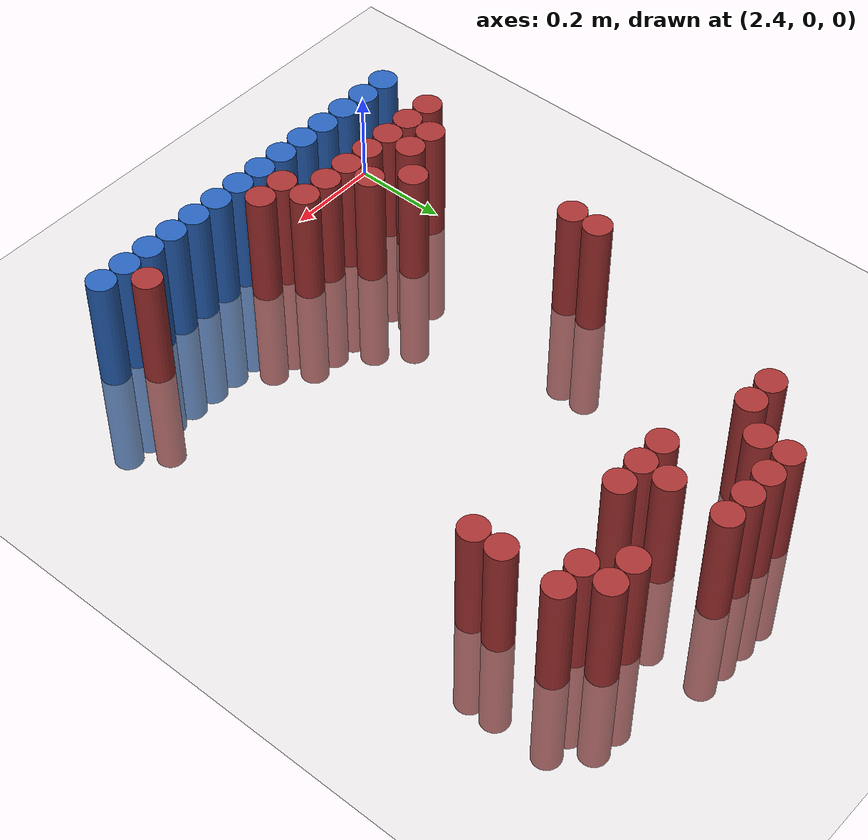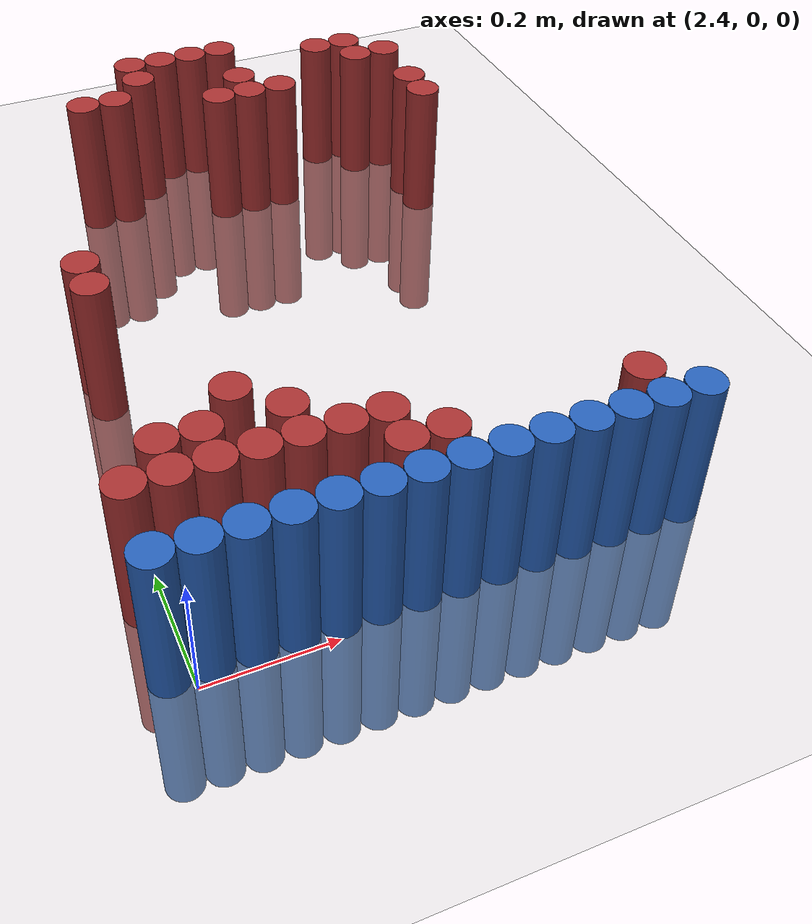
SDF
<sdf version="1.6">
 <world name="default">
  <model name="ground_plane">
   <static>1</static>
   <link name="link">
    <collision name="collision">
     <geometry><plane><normal>0 0 1</normal><size>100 100</size></plane></geometry>
     <surface><friction><ode><mu>100</mu><mu2>50</mu2></ode></friction></surface>
    </collision>
    <visual name="visual">
     <cast_shadows>0</cast_shadows>
     <geometry><plane><normal>0 0 1</normal><size>100 100</size></plane></geometry>
     <material>
      <script><uri>file://media/materials/scripts/gazebo.material</uri><name>Gazebo/Grey</name></script>
     </material>
    </visual>
   </link>
  </model>
  <model name="unit_cylinder_204">
   <static>1</static>
   <pose>2.670000 1.230000 0.000000 0.000000 0.000000 0.000000</pose>
   <link name="link">
    <inertial>
     <mass>1</mass>
     <inertia><ixx>0.145833</ixx><ixy>0</ixy><ixz>0</ixz><iyy>0.145833</iyy><iyz>0</iyz><izz>0.125</izz></inertia>
    </inertial>
    <collision name="collision">
     <geometry><cylinder><radius>0.030000</radius><length>0.5</length></cylinder></geometry>
    </collision>
    <visual name="visual">
     <geometry><cylinder><radius>0.030000</radius><length>0.5</length></cylinder></geometry>
     <material>
      <ambient>0.648000 0.192000 0.192000 1</ambient>
      <diffuse>0.648000 0.192000 0.192000 1</diffuse>
     </material>
     <material>
      <script><name>Gazebo/Grey</name><uri>file://media/materials/scripts/gazebo.material</uri></script>
     </material>
    </visual>
   </link>
  </model>
  <model name="unit_cylinder_205">
   <static>1</static>
   <pose>2.730000 1.230000 0.000000 0.000000 0.000000 0.000000</pose>
   <link name="link">
    <inertial>
     <mass>1</mass>
     <inertia><ixx>0.145833</ixx><ixy>0</ixy><ixz>0</ixz><iyy>0.145833</iyy><iyz>0</iyz><izz>0.125</izz></inertia>
    </inertial>
    <collision name="collision">
     <geometry><cylinder><radius>0.030000</radius><length>0.5</length></cylinder></geometry>
    </collision>
    <visual name="visual">
     <geometry><cylinder><radius>0.030000</radius><length>0.5</length></cylinder></geometry>
     <material>
      <ambient>0.648000 0.192000 0.192000 1</ambient>
      <diffuse>0.648000 0.192000 0.192000 1</diffuse>
     </material>
     <material>
      <script><name>Gazebo/Grey</name><uri>file://media/materials/scripts/gazebo.material</uri></script>
     </material>
    </visual>
   </link>
  </model>
  <model name="unit_cylinder_206">
   <static>1</static>
   <pose>2.790000 1.230000 0.000000 0.000000 0.000000 0.000000</pose>
   <link name="link">
    <inertial>
     <mass>1</mass>
     <inertia><ixx>0.145833</ixx><ixy>0</ixy><ixz>0</ixz><iyy>0.145833</iyy><iyz>0</iyz><izz>0.125</izz></inertia>
    </inertial>
    <collision name="collision">
     <geometry><cylinder><radius>0.030000</radius><length>0.5</length></cylinder></geometry>
    </collision>
    <visual name="visual">
     <geometry><cylinder><radius>0.030000</radius><length>0.5</length></cylinder></geometry>
     <material>
      <ambient>0.648000 0.192000 0.192000 1</ambient>
      <diffuse>0.648000 0.192000 0.192000 1</diffuse>
     </material>
     <material>
      <script><name>Gazebo/Grey</name><uri>file://media/materials/scripts/gazebo.material</uri></script>
     </material>
    </visual>
   </link>
  </model>
  <model name="unit_cylinder_207">
   <static>1</static>
   <pose>2.850000 1.230000 0.000000 0.000000 0.000000 0.000000</pose>
   <link name="link">
    <inertial>
     <mass>1</mass>
     <inertia><ixx>0.145833</ixx><ixy>0</ixy><ixz>0</ixz><iyy>0.145833</iyy><iyz>0</iyz><izz>0.125</izz></inertia>
    </inertial>
    <collision name="collision">
     <geometry><cylinder><radius>0.030000</radius><length>0.5</length></cylinder></geometry>
    </collision>
    <visual name="visual">
     <geometry><cylinder><radius>0.030000</radius><length>0.5</length></cylinder></geometry>
     <material>
      <ambient>0.648000 0.192000 0.192000 1</ambient>
      <diffuse>0.648000 0.192000 0.192000 1</diffuse>
     </material>
     <material>
      <script><name>Gazebo/Grey</name><uri>file://media/materials/scripts/gazebo.material</uri></script>
     </material>
    </visual>
   </link>
  </model>
  <model name="unit_cylinder_214">
   <static>1</static>
   <pose>2.670000 1.170000 0.000000 0.000000 0.000000 0.000000</pose>
   <link name="link">
    <inertial>
     <mass>1</mass>
     <inertia><ixx>0.145833</ixx><ixy>0</ixy><ixz>0</ixz><iyy>0.145833</iyy><iyz>0</iyz><izz>0.125</izz></inertia>
    </inertial>
    <collision name="collision">
     <geometry><cylinder><radius>0.030000</radius><length>0.5</length></cylinder></geometry>
    </collision>
    <visual name="visual">
     <geometry><cylinder><radius>0.030000</radius><length>0.5</length></cylinder></geometry>
     <material>
      <ambient>0.648000 0.192000 0.192000 1</ambient>
      <diffuse>0.648000 0.192000 0.192000 1</diffuse>
     </material>
     <material>
      <script><name>Gazebo/Grey</name><uri>file://media/materials/scripts/gazebo.material</uri></script>
     </material>
    </visual>
   </link>
  </model>
  <model name="unit_cylinder_215">
   <static>1</static>
   <pose>3.030000 1.170000 0.000000 0.000000 0.000000 0.000000</pose>
   <link name="link">
    <inertial>
     <mass>1</mass>
     <inertia><ixx>0.145833</ixx><ixy>0</ixy><ixz>0</ixz><iyy>0.145833</iyy><iyz>0</iyz><izz>0.125</izz></inertia>
    </inertial>
    <collision name="collision">
     <geometry><cylinder><radius>0.030000</radius><length>0.5</length></cylinder></geometry>
    </collision>
    <visual name="visual">
     <geometry><cylinder><radius>0.030000</radius><length>0.5</length></cylinder></geometry>
     <material>
      <ambient>0.648000 0.192000 0.192000 1</ambient>
      <diffuse>0.648000 0.192000 0.192000 1</diffuse>
     </material>
     <material>
      <script><name>Gazebo/Grey</name><uri>file://media/materials/scripts/gazebo.material</uri></script>
     </material>
    </visual>
   </link>
  </model>
  <model name="unit_cylinder_216">
   <static>1</static>
   <pose>3.090000 1.170000 0.000000 0.000000 0.000000 0.000000</pose>
   <link name="link">
    <inertial>
     <mass>1</mass>
     <inertia><ixx>0.145833</ixx><ixy>0</ixy><ixz>0</ixz><iyy>0.145833</iyy><iyz>0</iyz><izz>0.125</izz></inertia>
    </inertial>
    <collision name="collision">
     <geometry><cylinder><radius>0.030000</radius><length>0.5</length></cylinder></geometry>
    </collision>
    <visual name="visual">
     <geometry><cylinder><radius>0.030000</radius><length>0.5</length></cylinder></geometry>
     <material>
      <ambient>0.648000 0.192000 0.192000 1</ambient>
      <diffuse>0.648000 0.192000 0.192000 1</diffuse>
     </material>
     <material>
      <script><name>Gazebo/Grey</name><uri>file://media/materials/scripts/gazebo.material</uri></script>
     </material>
    </visual>
   </link>
  </model>
  <model name="unit_cylinder_219">
   <static>1</static>
   <pose>2.550000 1.110000 0.000000 0.000000 0.000000 0.000000</pose>
   <link name="link">
    <inertial>
     <mass>1</mass>
     <inertia><ixx>0.145833</ixx><ixy>0</ixy><ixz>0</ixz><iyy>0.145833</iyy><iyz>0</iyz><izz>0.125</izz></inertia>
    </inertial>
    <collision name="collision">
     <geometry><cylinder><radius>0.030000</radius><length>0.5</length></cylinder></geometry>
    </collision>
    <visual name="visual">
     <geometry><cylinder><radius>0.030000</radius><length>0.5</length></cylinder></geometry>
     <material>
      <ambient>0.648000 0.192000 0.192000 1</ambient>
      <diffuse>0.648000 0.192000 0.192000 1</diffuse>
     </material>
     <material>
      <script><name>Gazebo/Grey</name><uri>file://media/materials/scripts/gazebo.material</uri></script>
     </material>
    </visual>
   </link>
  </model>
  <model name="unit_cylinder_220">
   <static>1</static>
   <pose>2.610000 1.110000 0.000000 0.000000 0.000000 0.000000</pose>
   <link name="link">
    <inertial>
     <mass>1</mass>
     <inertia><ixx>0.145833</ixx><ixy>0</ixy><ixz>0</ixz><iyy>0.145833</iyy><iyz>0</iyz><izz>0.125</izz></inertia>
    </inertial>
    <collision name="collision">
     <geometry><cylinder><radius>0.030000</radius><length>0.5</length></cylinder></geometry>
    </collision>
    <visual name="visual">
     <geometry><cylinder><radius>0.030000</radius><length>0.5</length></cylinder></geometry>
     <material>
      <ambient>0.648000 0.192000 0.192000 1</ambient>
      <diffuse>0.648000 0.192000 0.192000 1</diffuse>
     </material>
     <material>
      <script><name>Gazebo/Grey</name><uri>file://media/materials/scripts/gazebo.material</uri></script>
     </material>
    </visual>
   </link>
  </model>
  <model name="unit_cylinder_221">
   <static>1</static>
   <pose>2.850000 1.110000 0.000000 0.000000 0.000000 0.000000</pose>
   <link name="link">
    <inertial>
     <mass>1</mass>
     <inertia><ixx>0.145833</ixx><ixy>0</ixy><ixz>0</ixz><iyy>0.145833</iyy><iyz>0</iyz><izz>0.125</izz></inertia>
    </inertial>
    <collision name="collision">
     <geometry><cylinder><radius>0.030000</radius><length>0.5</length></cylinder></geometry>
    </collision>
    <visual name="visual">
     <geometry><cylinder><radius>0.030000</radius><length>0.5</length></cylinder></geometry>
     <material>
      <ambient>0.648000 0.192000 0.192000 1</ambient>
      <diffuse>0.648000 0.192000 0.192000 1</diffuse>
     </material>
     <material>
      <script><name>Gazebo/Grey</name><uri>file://media/materials/scripts/gazebo.material</uri></script>
     </material>
    </visual>
   </link>
  </model>
  <model name="unit_cylinder_222">
   <static>1</static>
   <pose>3.090000 1.110000 0.000000 0.000000 0.000000 0.000000</pose>
   <link name="link">
    <inertial>
     <mass>1</mass>
     <inertia><ixx>0.145833</ixx><ixy>0</ixy><ixz>0</ixz><iyy>0.145833</iyy><iyz>0</iyz><izz>0.125</izz></inertia>
    </inertial>
    <collision name="collision">
     <geometry><cylinder><radius>0.030000</radius><length>0.5</length></cylinder></geometry>
    </collision>
    <visual name="visual">
     <geometry><cylinder><radius>0.030000</radius><length>0.5</length></cylinder></geometry>
     <material>
      <ambient>0.648000 0.192000 0.192000 1</ambient>
      <diffuse>0.648000 0.192000 0.192000 1</diffuse>
     </material>
     <material>
      <script><name>Gazebo/Grey</name><uri>file://media/materials/scripts/gazebo.material</uri></script>
     </material>
    </visual>
   </link>
  </model>
  <model name="unit_cylinder_223">
   <static>1</static>
   <pose>3.150000 1.110000 0.000000 0.000000 0.000000 0.000000</pose>
   <link name="link">
    <inertial>
     <mass>1</mass>
     <inertia><ixx>0.145833</ixx><ixy>0</ixy><ixz>0</ixz><iyy>0.145833</iyy><iyz>0</iyz><izz>0.125</izz></inertia>
    </inertial>
    <collision name="collision">
     <geometry><cylinder><radius>0.030000</radius><length>0.5</length></cylinder></geometry>
    </collision>
    <visual name="visual">
     <geometry><cylinder><radius>0.030000</radius><length>0.5</length></cylinder></geometry>
     <material>
      <ambient>0.648000 0.192000 0.192000 1</ambient>
      <diffuse>0.648000 0.192000 0.192000 1</diffuse>
     </material>
     <material>
      <script><name>Gazebo/Grey</name><uri>file://media/materials/scripts/gazebo.material</uri></script>
     </material>
    </visual>
   </link>
  </model>
  <model name="unit_cylinder_224">
   <static>1</static>
   <pose>2.790000 1.050000 0.000000 0.000000 0.000000 0.000000</pose>
   <link name="link">
    <inertial>
     <mass>1</mass>
     <inertia><ixx>0.145833</ixx><ixy>0</ixy><ixz>0</ixz><iyy>0.145833</iyy><iyz>0</iyz><izz>0.125</izz></inertia>
    </inertial>
    <collision name="collision">
     <geometry><cylinder><radius>0.030000</radius><length>0.5</length></cylinder></geometry>
    </collision>
    <visual name="visual">
     <geometry><cylinder><radius>0.030000</radius><length>0.5</length></cylinder></geometry>
     <material>
      <ambient>0.648000 0.192000 0.192000 1</ambient>
      <diffuse>0.648000 0.192000 0.192000 1</diffuse>
     </material>
     <material>
      <script><name>Gazebo/Grey</name><uri>file://media/materials/scripts/gazebo.material</uri></script>
     </material>
    </visual>
   </link>
  </model>
  <model name="unit_cylinder_225">
   <static>1</static>
   <pose>2.850000 1.050000 0.000000 0.000000 0.000000 0.000000</pose>
   <link name="link">
    <inertial>
     <mass>1</mass>
     <inertia><ixx>0.145833</ixx><ixy>0</ixy><ixz>0</ixz><iyy>0.145833</iyy><iyz>0</iyz><izz>0.125</izz></inertia>
    </inertial>
    <collision name="collision">
     <geometry><cylinder><radius>0.030000</radius><length>0.5</length></cylinder></geometry>
    </collision>
    <visual name="visual">
     <geometry><cylinder><radius>0.030000</radius><length>0.5</length></cylinder></geometry>
     <material>
      <ambient>0.648000 0.192000 0.192000 1</ambient>
      <diffuse>0.648000 0.192000 0.192000 1</diffuse>
     </material>
     <material>
      <script><name>Gazebo/Grey</name><uri>file://media/materials/scripts/gazebo.material</uri></script>
     </material>
    </visual>
   </link>
  </model>
  <model name="unit_cylinder_226">
   <static>1</static>
   <pose>2.910000 1.050000 0.000000 0.000000 0.000000 0.000000</pose>
   <link name="link">
    <inertial>
     <mass>1</mass>
     <inertia><ixx>0.145833</ixx><ixy>0</ixy><ixz>0</ixz><iyy>0.145833</iyy><iyz>0</iyz><izz>0.125</izz></inertia>
    </inertial>
    <collision name="collision">
     <geometry><cylinder><radius>0.030000</radius><length>0.5</length></cylinder></geometry>
    </collision>
    <visual name="visual">
     <geometry><cylinder><radius>0.030000</radius><length>0.5</length></cylinder></geometry>
     <material>
      <ambient>0.648000 0.192000 0.192000 1</ambient>
      <diffuse>0.648000 0.192000 0.192000 1</diffuse>
     </material>
     <material>
      <script><name>Gazebo/Grey</name><uri>file://media/materials/scripts/gazebo.material</uri></script>
     </material>
    </visual>
   </link>
  </model>
  <model name="unit_cylinder_230">
   <static>1</static>
   <pose>3.150000 0.990000 0.000000 0.000000 0.000000 0.000000</pose>
   <link name="link">
    <inertial>
     <mass>1</mass>
     <inertia><ixx>0.145833</ixx><ixy>0</ixy><ixz>0</ixz><iyy>0.145833</iyy><iyz>0</iyz><izz>0.125</izz></inertia>
    </inertial>
    <collision name="collision">
     <geometry><cylinder><radius>0.030000</radius><length>0.5</length></cylinder></geometry>
    </collision>
    <visual name="visual">
     <geometry><cylinder><radius>0.030000</radius><length>0.5</length></cylinder></geometry>
     <material>
      <ambient>0.648000 0.192000 0.192000 1</ambient>
      <diffuse>0.648000 0.192000 0.192000 1</diffuse>
     </material>
     <material>
      <script><name>Gazebo/Grey</name><uri>file://media/materials/scripts/gazebo.material</uri></script>
     </material>
    </visual>
   </link>
  </model>
  <model name="unit_cylinder_234">
   <static>1</static>
   <pose>3.150000 0.930000 0.000000 0.000000 0.000000 0.000000</pose>
   <link name="link">
    <inertial>
     <mass>1</mass>
     <inertia><ixx>0.145833</ixx><ixy>0</ixy><ixz>0</ixz><iyy>0.145833</iyy><iyz>0</iyz><izz>0.125</izz></inertia>
    </inertial>
    <collision name="collision">
     <geometry><cylinder><radius>0.030000</radius><length>0.5</length></cylinder></geometry>
    </collision>
    <visual name="visual">
     <geometry><cylinder><radius>0.030000</radius><length>0.5</length></cylinder></geometry>
     <material>
      <ambient>0.648000 0.192000 0.192000 1</ambient>
      <diffuse>0.648000 0.192000 0.192000 1</diffuse>
     </material>
     <material>
      <script><name>Gazebo/Grey</name><uri>file://media/materials/scripts/gazebo.material</uri></script>
     </material>
    </visual>
   </link>
  </model>
  <model name="unit_cylinder_253">
   <static>1</static>
   <pose>2.430000 0.630000 0.000000 0.000000 0.000000 0.000000</pose>
   <link name="link">
    <inertial>
     <mass>1</mass>
     <inertia><ixx>0.145833</ixx><ixy>0</ixy><ixz>0</ixz><iyy>0.145833</iyy><iyz>0</iyz><izz>0.125</izz></inertia>
    </inertial>
    <collision name="collision">
     <geometry><cylinder><radius>0.030000</radius><length>0.5</length></cylinder></geometry>
    </collision>
    <visual name="visual">
     <geometry><cylinder><radius>0.030000</radius><length>0.5</length></cylinder></geometry>
     <material>
      <ambient>0.648000 0.192000 0.192000 1</ambient>
      <diffuse>0.648000 0.192000 0.192000 1</diffuse>
     </material>
     <material>
      <script><name>Gazebo/Grey</name><uri>file://media/materials/scripts/gazebo.material</uri></script>
     </material>
    </visual>
   </link>
  </model>
  <model name="unit_cylinder_258">
   <static>1</static>
   <pose>2.430000 0.570000 0.000000 0.000000 0.000000 0.000000</pose>
   <link name="link">
    <inertial>
     <mass>1</mass>
     <inertia><ixx>0.145833</ixx><ixy>0</ixy><ixz>0</ixz><iyy>0.145833</iyy><iyz>0</iyz><izz>0.125</izz></inertia>
    </inertial>
    <collision name="collision">
     <geometry><cylinder><radius>0.030000</radius><length>0.5</length></cylinder></geometry>
    </collision>
    <visual name="visual">
     <geometry><cylinder><radius>0.030000</radius><length>0.5</length></cylinder></geometry>
     <material>
      <ambient>0.648000 0.192000 0.192000 1</ambient>
      <diffuse>0.648000 0.192000 0.192000 1</diffuse>
     </material>
     <material>
      <script><name>Gazebo/Grey</name><uri>file://media/materials/scripts/gazebo.material</uri></script>
     </material>
    </visual>
   </link>
  </model>
  <model name="unit_cylinder_268">
   <static>1</static>
   <pose>2.550000 0.270000 0.000000 0.000000 0.000000 0.000000</pose>
   <link name="link">
    <inertial>
     <mass>1</mass>
     <inertia><ixx>0.145833</ixx><ixy>0</ixy><ixz>0</ixz><iyy>0.145833</iyy><iyz>0</iyz><izz>0.125</izz></inertia>
    </inertial>
    <collision name="collision">
     <geometry><cylinder><radius>0.030000</radius><length>0.5</length></cylinder></geometry>
    </collision>
    <visual name="visual">
     <geometry><cylinder><radius>0.030000</radius><length>0.5</length></cylinder></geometry>
     <material>
      <ambient>0.648000 0.192000 0.192000 1</ambient>
      <diffuse>0.648000 0.192000 0.192000 1</diffuse>
     </material>
     <material>
      <script><name>Gazebo/Grey</name><uri>file://media/materials/scripts/gazebo.material</uri></script>
     </material>
    </visual>
   </link>
  </model>
  <model name="unit_cylinder_270">
   <static>1</static>
   <pose>2.430000 0.210000 0.000000 0.000000 0.000000 0.000000</pose>
   <link name="link">
    <inertial>
     <mass>1</mass>
     <inertia><ixx>0.145833</ixx><ixy>0</ixy><ixz>0</ixz><iyy>0.145833</iyy><iyz>0</iyz><izz>0.125</izz></inertia>
    </inertial>
    <collision name="collision">
     <geometry><cylinder><radius>0.030000</radius><length>0.5</length></cylinder></geometry>
    </collision>
    <visual name="visual">
     <geometry><cylinder><radius>0.030000</radius><length>0.5</length></cylinder></geometry>
     <material>
      <ambient>0.648000 0.192000 0.192000 1</ambient>
      <diffuse>0.648000 0.192000 0.192000 1</diffuse>
     </material>
     <material>
      <script><name>Gazebo/Grey</name><uri>file://media/materials/scripts/gazebo.material</uri></script>
     </material>
    </visual>
   </link>
  </model>
  <model name="unit_cylinder_271">
   <static>1</static>
   <pose>2.490000 0.210000 0.000000 0.000000 0.000000 0.000000</pose>
   <link name="link">
    <inertial>
     <mass>1</mass>
     <inertia><ixx>0.145833</ixx><ixy>0</ixy><ixz>0</ixz><iyy>0.145833</iyy><iyz>0</iyz><izz>0.125</izz></inertia>
    </inertial>
    <collision name="collision">
     <geometry><cylinder><radius>0.030000</radius><length>0.5</length></cylinder></geometry>
    </collision>
    <visual name="visual">
     <geometry><cylinder><radius>0.030000</radius><length>0.5</length></cylinder></geometry>
     <material>
      <ambient>0.648000 0.192000 0.192000 1</ambient>
      <diffuse>0.648000 0.192000 0.192000 1</diffuse>
     </material>
     <material>
      <script><name>Gazebo/Grey</name><uri>file://media/materials/scripts/gazebo.material</uri></script>
     </material>
    </visual>
   </link>
  </model>
  <model name="unit_cylinder_272">
   <static>1</static>
   <pose>2.610000 0.210000 0.000000 0.000000 0.000000 0.000000</pose>
   <link name="link">
    <inertial>
     <mass>1</mass>
     <inertia><ixx>0.145833</ixx><ixy>0</ixy><ixz>0</ixz><iyy>0.145833</iyy><iyz>0</iyz><izz>0.125</izz></inertia>
    </inertial>
    <collision name="collision">
     <geometry><cylinder><radius>0.030000</radius><length>0.5</length></cylinder></geometry>
    </collision>
    <visual name="visual">
     <geometry><cylinder><radius>0.030000</radius><length>0.5</length></cylinder></geometry>
     <material>
      <ambient>0.648000 0.192000 0.192000 1</ambient>
      <diffuse>0.648000 0.192000 0.192000 1</diffuse>
     </material>
     <material>
      <script><name>Gazebo/Grey</name><uri>file://media/materials/scripts/gazebo.material</uri></script>
     </material>
    </visual>
   </link>
  </model>
  <model name="unit_cylinder_278">
   <static>1</static>
   <pose>2.370000 0.150000 0.000000 0.000000 0.000000 0.000000</pose>
   <link name="link">
    <inertial>
     <mass>1</mass>
     <inertia><ixx>0.145833</ixx><ixy>0</ixy><ixz>0</ixz><iyy>0.145833</iyy><iyz>0</iyz><izz>0.125</izz></inertia>
    </inertial>
    <collision name="collision">
     <geometry><cylinder><radius>0.030000</radius><length>0.5</length></cylinder></geometry>
    </collision>
    <visual name="visual">
     <geometry><cylinder><radius>0.030000</radius><length>0.5</length></cylinder></geometry>
     <material>
      <ambient>0.648000 0.192000 0.192000 1</ambient>
      <diffuse>0.648000 0.192000 0.192000 1</diffuse>
     </material>
     <material>
      <script><name>Gazebo/Grey</name><uri>file://media/materials/scripts/gazebo.material</uri></script>
     </material>
    </visual>
   </link>
  </model>
  <model name="unit_cylinder_279">
   <static>1</static>
   <pose>2.430000 0.150000 0.000000 0.000000 0.000000 0.000000</pose>
   <link name="link">
    <inertial>
     <mass>1</mass>
     <inertia><ixx>0.145833</ixx><ixy>0</ixy><ixz>0</ixz><iyy>0.145833</iyy><iyz>0</iyz><izz>0.125</izz></inertia>
    </inertial>
    <collision name="collision">
     <geometry><cylinder><radius>0.030000</radius><length>0.5</length></cylinder></geometry>
    </collision>
    <visual name="visual">
     <geometry><cylinder><radius>0.030000</radius><length>0.5</length></cylinder></geometry>
     <material>
      <ambient>0.648000 0.192000 0.192000 1</ambient>
      <diffuse>0.648000 0.192000 0.192000 1</diffuse>
     </material>
     <material>
      <script><name>Gazebo/Grey</name><uri>file://media/materials/scripts/gazebo.material</uri></script>
     </material>
    </visual>
   </link>
  </model>
  <model name="unit_cylinder_280">
   <static>1</static>
   <pose>2.490000 0.150000 0.000000 0.000000 0.000000 0.000000</pose>
   <link name="link">
    <inertial>
     <mass>1</mass>
     <inertia><ixx>0.145833</ixx><ixy>0</ixy><ixz>0</ixz><iyy>0.145833</iyy><iyz>0</iyz><izz>0.125</izz></inertia>
    </inertial>
    <collision name="collision">
     <geometry><cylinder><radius>0.030000</radius><length>0.5</length></cylinder></geometry>
    </collision>
    <visual name="visual">
     <geometry><cylinder><radius>0.030000</radius><length>0.5</length></cylinder></geometry>
     <material>
      <ambient>0.648000 0.192000 0.192000 1</ambient>
      <diffuse>0.648000 0.192000 0.192000 1</diffuse>
     </material>
     <material>
      <script><name>Gazebo/Grey</name><uri>file://media/materials/scripts/gazebo.material</uri></script>
     </material>
    </visual>
   </link>
  </model>
  <model name="unit_cylinder_281">
   <static>1</static>
   <pose>2.550000 0.150000 0.000000 0.000000 0.000000 0.000000</pose>
   <link name="link">
    <inertial>
     <mass>1</mass>
     <inertia><ixx>0.145833</ixx><ixy>0</ixy><ixz>0</ixz><iyy>0.145833</iyy><iyz>0</iyz><izz>0.125</izz></inertia>
    </inertial>
    <collision name="collision">
     <geometry><cylinder><radius>0.030000</radius><length>0.5</length></cylinder></geometry>
    </collision>
    <visual name="visual">
     <geometry><cylinder><radius>0.030000</radius><length>0.5</length></cylinder></geometry>
     <material>
      <ambient>0.648000 0.192000 0.192000 1</ambient>
      <diffuse>0.648000 0.192000 0.192000 1</diffuse>
     </material>
     <material>
      <script><name>Gazebo/Grey</name><uri>file://media/materials/scripts/gazebo.material</uri></script>
     </material>
    </visual>
   </link>
  </model>
  <model name="unit_cylinder_282">
   <static>1</static>
   <pose>2.610000 0.150000 0.000000 0.000000 0.000000 0.000000</pose>
   <link name="link">
    <inertial>
     <mass>1</mass>
     <inertia><ixx>0.145833</ixx><ixy>0</ixy><ixz>0</ixz><iyy>0.145833</iyy><iyz>0</iyz><izz>0.125</izz></inertia>
    </inertial>
    <collision name="collision">
     <geometry><cylinder><radius>0.030000</radius><length>0.5</length></cylinder></geometry>
    </collision>
    <visual name="visual">
     <geometry><cylinder><radius>0.030000</radius><length>0.5</length></cylinder></geometry>
     <material>
      <ambient>0.648000 0.192000 0.192000 1</ambient>
      <diffuse>0.648000 0.192000 0.192000 1</diffuse>
     </material>
     <material>
      <script><name>Gazebo/Grey</name><uri>file://media/materials/scripts/gazebo.material</uri></script>
     </material>
    </visual>
   </link>
  </model>
  <model name="unit_cylinder_283">
   <static>1</static>
   <pose>2.670000 0.150000 0.000000 0.000000 0.000000 0.000000</pose>
   <link name="link">
    <inertial>
     <mass>1</mass>
     <inertia><ixx>0.145833</ixx><ixy>0</ixy><ixz>0</ixz><iyy>0.145833</iyy><iyz>0</iyz><izz>0.125</izz></inertia>
    </inertial>
    <collision name="collision">
     <geometry><cylinder><radius>0.030000</radius><length>0.5</length></cylinder></geometry>
    </collision>
    <visual name="visual">
     <geometry><cylinder><radius>0.030000</radius><length>0.5</length></cylinder></geometry>
     <material>
      <ambient>0.648000 0.192000 0.192000 1</ambient>
      <diffuse>0.648000 0.192000 0.192000 1</diffuse>
     </material>
     <material>
      <script><name>Gazebo/Grey</name><uri>file://media/materials/scripts/gazebo.material</uri></script>
     </material>
    </visual>
   </link>
  </model>
  <model name="unit_cylinder_284">
   <static>1</static>
   <pose>2.730000 0.150000 0.000000 0.000000 0.000000 0.000000</pose>
   <link name="link">
    <inertial>
     <mass>1</mass>
     <inertia><ixx>0.145833</ixx><ixy>0</ixy><ixz>0</ixz><iyy>0.145833</iyy><iyz>0</iyz><izz>0.125</izz></inertia>
    </inertial>
    <collision name="collision">
     <geometry><cylinder><radius>0.030000</radius><length>0.5</length></cylinder></geometry>
    </collision>
    <visual name="visual">
     <geometry><cylinder><radius>0.030000</radius><length>0.5</length></cylinder></geometry>
     <material>
      <ambient>0.648000 0.192000 0.192000 1</ambient>
      <diffuse>0.648000 0.192000 0.192000 1</diffuse>
     </material>
     <material>
      <script><name>Gazebo/Grey</name><uri>file://media/materials/scripts/gazebo.material</uri></script>
     </material>
    </visual>
   </link>
  </model>
  <model name="unit_cylinder_291">
   <static>1</static>
   <pose>2.730000 0.090000 0.000000 0.000000 0.000000 0.000000</pose>
   <link name="link">
    <inertial>
     <mass>1</mass>
     <inertia><ixx>0.145833</ixx><ixy>0</ixy><ixz>0</ixz><iyy>0.145833</iyy><iyz>0</iyz><izz>0.125</izz></inertia>
    </inertial>
    <collision name="collision">
     <geometry><cylinder><radius>0.030000</radius><length>0.5</length></cylinder></geometry>
    </collision>
    <visual name="visual">
     <geometry><cylinder><radius>0.030000</radius><length>0.5</length></cylinder></geometry>
     <material>
      <ambient>0.648000 0.192000 0.192000 1</ambient>
      <diffuse>0.648000 0.192000 0.192000 1</diffuse>
     </material>
     <material>
      <script><name>Gazebo/Grey</name><uri>file://media/materials/scripts/gazebo.material</uri></script>
     </material>
    </visual>
   </link>
  </model>
  <model name="unit_cylinder_292">
   <static>1</static>
   <pose>2.790000 0.090000 0.000000 0.000000 0.000000 0.000000</pose>
   <link name="link">
    <inertial>
     <mass>1</mass>
     <inertia><ixx>0.145833</ixx><ixy>0</ixy><ixz>0</ixz><iyy>0.145833</iyy><iyz>0</iyz><izz>0.125</izz></inertia>
    </inertial>
    <collision name="collision">
     <geometry><cylinder><radius>0.030000</radius><length>0.5</length></cylinder></geometry>
    </collision>
    <visual name="visual">
     <geometry><cylinder><radius>0.030000</radius><length>0.5</length></cylinder></geometry>
     <material>
      <ambient>0.648000 0.192000 0.192000 1</ambient>
      <diffuse>0.648000 0.192000 0.192000 1</diffuse>
     </material>
     <material>
      <script><name>Gazebo/Grey</name><uri>file://media/materials/scripts/gazebo.material</uri></script>
     </material>
    </visual>
   </link>
  </model>
  <model name="unit_cylinder_293">
   <static>1</static>
   <pose>3.090000 0.090000 0.000000 0.000000 0.000000 0.000000</pose>
   <link name="link">
    <inertial>
     <mass>1</mass>
     <inertia><ixx>0.145833</ixx><ixy>0</ixy><ixz>0</ixz><iyy>0.145833</iyy><iyz>0</iyz><izz>0.125</izz></inertia>
    </inertial>
    <collision name="collision">
     <geometry><cylinder><radius>0.030000</radius><length>0.5</length></cylinder></geometry>
    </collision>
    <visual name="visual">
     <geometry><cylinder><radius>0.030000</radius><length>0.5</length></cylinder></geometry>
     <material>
      <ambient>0.648000 0.192000 0.192000 1</ambient>
      <diffuse>0.648000 0.192000 0.192000 1</diffuse>
     </material>
     <material>
      <script><name>Gazebo/Grey</name><uri>file://media/materials/scripts/gazebo.material</uri></script>
     </material>
    </visual>
   </link>
  </model>
  <model name="unit_cylinder_308">
   <static>1</static>
   <pose>2.370000 0.030000 0.000000 0.000000 0.000000 0.000000</pose>
   <link name="link">
    <inertial>
     <mass>1</mass>
     <inertia><ixx>0.145833</ixx><ixy>0</ixy><ixz>0</ixz><iyy>0.145833</iyy><iyz>0</iyz><izz>0.125</izz></inertia>
    </inertial>
    <collision name="collision">
     <geometry><cylinder><radius>0.030000</radius><length>0.5</length></cylinder></geometry>
    </collision>
    <visual name="visual">
     <geometry><cylinder><radius>0.030000</radius><length>0.5</length></cylinder></geometry>
     <material>
      <ambient>0.152000 0.379000 0.720000 1</ambient>
      <diffuse>0.152000 0.379000 0.720000 1</diffuse>
     </material>
     <material>
      <script><name>Gazebo/Grey</name><uri>file://media/materials/scripts/gazebo.material</uri></script>
     </material>
    </visual>
   </link>
  </model>
  <model name="unit_cylinder_309">
   <static>1</static>
   <pose>2.430000 0.030000 0.000000 0.000000 0.000000 0.000000</pose>
   <link name="link">
    <inertial>
     <mass>1</mass>
     <inertia><ixx>0.145833</ixx><ixy>0</ixy><ixz>0</ixz><iyy>0.145833</iyy><iyz>0</iyz><izz>0.125</izz></inertia>
    </inertial>
    <collision name="collision">
     <geometry><cylinder><radius>0.030000</radius><length>0.5</length></cylinder></geometry>
    </collision>
    <visual name="visual">
     <geometry><cylinder><radius>0.030000</radius><length>0.5</length></cylinder></geometry>
     <material>
      <ambient>0.152000 0.379000 0.720000 1</ambient>
      <diffuse>0.152000 0.379000 0.720000 1</diffuse>
     </material>
     <material>
      <script><name>Gazebo/Grey</name><uri>file://media/materials/scripts/gazebo.material</uri></script>
     </material>
    </visual>
   </link>
  </model>
  <model name="unit_cylinder_310">
   <static>1</static>
   <pose>2.490000 0.030000 0.000000 0.000000 0.000000 0.000000</pose>
   <link name="link">
    <inertial>
     <mass>1</mass>
     <inertia><ixx>0.145833</ixx><ixy>0</ixy><ixz>0</ixz><iyy>0.145833</iyy><iyz>0</iyz><izz>0.125</izz></inertia>
    </inertial>
    <collision name="collision">
     <geometry><cylinder><radius>0.030000</radius><length>0.5</length></cylinder></geometry>
    </collision>
    <visual name="visual">
     <geometry><cylinder><radius>0.030000</radius><length>0.5</length></cylinder></geometry>
     <material>
      <ambient>0.152000 0.379000 0.720000 1</ambient>
      <diffuse>0.152000 0.379000 0.720000 1</diffuse>
     </material>
     <material>
      <script><name>Gazebo/Grey</name><uri>file://media/materials/scripts/gazebo.material</uri></script>
     </material>
    </visual>
   </link>
  </model>
  <model name="unit_cylinder_311">
   <static>1</static>
   <pose>2.550000 0.030000 0.000000 0.000000 0.000000 0.000000</pose>
   <link name="link">
    <inertial>
     <mass>1</mass>
     <inertia><ixx>0.145833</ixx><ixy>0</ixy><ixz>0</ixz><iyy>0.145833</iyy><iyz>0</iyz><izz>0.125</izz></inertia>
    </inertial>
    <collision name="collision">
     <geometry><cylinder><radius>0.030000</radius><length>0.5</length></cylinder></geometry>
    </collision>
    <visual name="visual">
     <geometry><cylinder><radius>0.030000</radius><length>0.5</length></cylinder></geometry>
     <material>
      <ambient>0.152000 0.379000 0.720000 1</ambient>
      <diffuse>0.152000 0.379000 0.720000 1</diffuse>
     </material>
     <material>
      <script><name>Gazebo/Grey</name><uri>file://media/materials/scripts/gazebo.material</uri></script>
     </material>
    </visual>
   </link>
  </model>
  <model name="unit_cylinder_312">
   <static>1</static>
   <pose>2.610000 0.030000 0.000000 0.000000 0.000000 0.000000</pose>
   <link name="link">
    <inertial>
     <mass>1</mass>
     <inertia><ixx>0.145833</ixx><ixy>0</ixy><ixz>0</ixz><iyy>0.145833</iyy><iyz>0</iyz><izz>0.125</izz></inertia>
    </inertial>
    <collision name="collision">
     <geometry><cylinder><radius>0.030000</radius><length>0.5</length></cylinder></geometry>
    </collision>
    <visual name="visual">
     <geometry><cylinder><radius>0.030000</radius><length>0.5</length></cylinder></geometry>
     <material>
      <ambient>0.152000 0.379000 0.720000 1</ambient>
      <diffuse>0.152000 0.379000 0.720000 1</diffuse>
     </material>
     <material>
      <script><name>Gazebo/Grey</name><uri>file://media/materials/scripts/gazebo.material</uri></script>
     </material>
    </visual>
   </link>
  </model>
  <model name="unit_cylinder_313">
   <static>1</static>
   <pose>2.670000 0.030000 0.000000 0.000000 0.000000 0.000000</pose>
   <link name="link">
    <inertial>
     <mass>1</mass>
     <inertia><ixx>0.145833</ixx><ixy>0</ixy><ixz>0</ixz><iyy>0.145833</iyy><iyz>0</iyz><izz>0.125</izz></inertia>
    </inertial>
    <collision name="collision">
     <geometry><cylinder><radius>0.030000</radius><length>0.5</length></cylinder></geometry>
    </collision>
    <visual name="visual">
     <geometry><cylinder><radius>0.030000</radius><length>0.5</length></cylinder></geometry>
     <material>
      <ambient>0.152000 0.379000 0.720000 1</ambient>
      <diffuse>0.152000 0.379000 0.720000 1</diffuse>
     </material>
     <material>
      <script><name>Gazebo/Grey</name><uri>file://media/materials/scripts/gazebo.material</uri></script>
     </material>
    </visual>
   </link>
  </model>
  <model name="unit_cylinder_314">
   <static>1</static>
   <pose>2.730000 0.030000 0.000000 0.000000 0.000000 0.000000</pose>
   <link name="link">
    <inertial>
     <mass>1</mass>
     <inertia><ixx>0.145833</ixx><ixy>0</ixy><ixz>0</ixz><iyy>0.145833</iyy><iyz>0</iyz><izz>0.125</izz></inertia>
    </inertial>
    <collision name="collision">
     <geometry><cylinder><radius>0.030000</radius><length>0.5</length></cylinder></geometry>
    </collision>
    <visual name="visual">
     <geometry><cylinder><radius>0.030000</radius><length>0.5</length></cylinder></geometry>
     <material>
      <ambient>0.152000 0.379000 0.720000 1</ambient>
      <diffuse>0.152000 0.379000 0.720000 1</diffuse>
     </material>
     <material>
      <script><name>Gazebo/Grey</name><uri>file://media/materials/scripts/gazebo.material</uri></script>
     </material>
    </visual>
   </link>
  </model>
  <model name="unit_cylinder_315">
   <static>1</static>
   <pose>2.790000 0.030000 0.000000 0.000000 0.000000 0.000000</pose>
   <link name="link">
    <inertial>
     <mass>1</mass>
     <inertia><ixx>0.145833</ixx><ixy>0</ixy><ixz>0</ixz><iyy>0.145833</iyy><iyz>0</iyz><izz>0.125</izz></inertia>
    </inertial>
    <collision name="collision">
     <geometry><cylinder><radius>0.030000</radius><length>0.5</length></cylinder></geometry>
    </collision>
    <visual name="visual">
     <geometry><cylinder><radius>0.030000</radius><length>0.5</length></cylinder></geometry>
     <material>
      <ambient>0.152000 0.379000 0.720000 1</ambient>
      <diffuse>0.152000 0.379000 0.720000 1</diffuse>
     </material>
     <material>
      <script><name>Gazebo/Grey</name><uri>file://media/materials/scripts/gazebo.material</uri></script>
     </material>
    </visual>
   </link>
  </model>
  <model name="unit_cylinder_316">
   <static>1</static>
   <pose>2.850000 0.030000 0.000000 0.000000 0.000000 0.000000</pose>
   <link name="link">
    <inertial>
     <mass>1</mass>
     <inertia><ixx>0.145833</ixx><ixy>0</ixy><ixz>0</ixz><iyy>0.145833</iyy><iyz>0</iyz><izz>0.125</izz></inertia>
    </inertial>
    <collision name="collision">
     <geometry><cylinder><radius>0.030000</radius><length>0.5</length></cylinder></geometry>
    </collision>
    <visual name="visual">
     <geometry><cylinder><radius>0.030000</radius><length>0.5</length></cylinder></geometry>
     <material>
      <ambient>0.152000 0.379000 0.720000 1</ambient>
      <diffuse>0.152000 0.379000 0.720000 1</diffuse>
     </material>
     <material>
      <script><name>Gazebo/Grey</name><uri>file://media/materials/scripts/gazebo.material</uri></script>
     </material>
    </visual>
   </link>
  </model>
  <model name="unit_cylinder_317">
   <static>1</static>
   <pose>2.910000 0.030000 0.000000 0.000000 0.000000 0.000000</pose>
   <link name="link">
    <inertial>
     <mass>1</mass>
     <inertia><ixx>0.145833</ixx><ixy>0</ixy><ixz>0</ixz><iyy>0.145833</iyy><iyz>0</iyz><izz>0.125</izz></inertia>
    </inertial>
    <collision name="collision">
     <geometry><cylinder><radius>0.030000</radius><length>0.5</length></cylinder></geometry>
    </collision>
    <visual name="visual">
     <geometry><cylinder><radius>0.030000</radius><length>0.5</length></cylinder></geometry>
     <material>
      <ambient>0.152000 0.379000 0.720000 1</ambient>
      <diffuse>0.152000 0.379000 0.720000 1</diffuse>
     </material>
     <material>
      <script><name>Gazebo/Grey</name><uri>file://media/materials/scripts/gazebo.material</uri></script>
     </material>
    </visual>
   </link>
  </model>
  <model name="unit_cylinder_318">
   <static>1</static>
   <pose>2.970000 0.030000 0.000000 0.000000 0.000000 0.000000</pose>
   <link name="link">
    <inertial>
     <mass>1</mass>
     <inertia><ixx>0.145833</ixx><ixy>0</ixy><ixz>0</ixz><iyy>0.145833</iyy><iyz>0</iyz><izz>0.125</izz></inertia>
    </inertial>
    <collision name="collision">
     <geometry><cylinder><radius>0.030000</radius><length>0.5</length></cylinder></geometry>
    </collision>
    <visual name="visual">
     <geometry><cylinder><radius>0.030000</radius><length>0.5</length></cylinder></geometry>
     <material>
      <ambient>0.152000 0.379000 0.720000 1</ambient>
      <diffuse>0.152000 0.379000 0.720000 1</diffuse>
     </material>
     <material>
      <script><name>Gazebo/Grey</name><uri>file://media/materials/scripts/gazebo.material</uri></script>
     </material>
    </visual>
   </link>
  </model>
  <model name="unit_cylinder_319">
   <static>1</static>
   <pose>3.030000 0.030000 0.000000 0.000000 0.000000 0.000000</pose>
   <link name="link">
    <inertial>
     <mass>1</mass>
     <inertia><ixx>0.145833</ixx><ixy>0</ixy><ixz>0</ixz><iyy>0.145833</iyy><iyz>0</iyz><izz>0.125</izz></inertia>
    </inertial>
    <collision name="collision">
     <geometry><cylinder><radius>0.030000</radius><length>0.5</length></cylinder></geometry>
    </collision>
    <visual name="visual">
     <geometry><cylinder><radius>0.030000</radius><length>0.5</length></cylinder></geometry>
     <material>
      <ambient>0.152000 0.379000 0.720000 1</ambient>
      <diffuse>0.152000 0.379000 0.720000 1</diffuse>
     </material>
     <material>
      <script><name>Gazebo/Grey</name><uri>file://media/materials/scripts/gazebo.material</uri></script>
     </material>
    </visual>
   </link>
  </model>
  <model name="unit_cylinder_320">
   <static>1</static>
   <pose>3.090000 0.030000 0.000000 0.000000 0.000000 0.000000</pose>
   <link name="link">
    <inertial>
     <mass>1</mass>
     <inertia><ixx>0.145833</ixx><ixy>0</ixy><ixz>0</ixz><iyy>0.145833</iyy><iyz>0</iyz><izz>0.125</izz></inertia>
    </inertial>
    <collision name="collision">
     <geometry><cylinder><radius>0.030000</radius><length>0.5</length></cylinder></geometry>
    </collision>
    <visual name="visual">
     <geometry><cylinder><radius>0.030000</radius><length>0.5</length></cylinder></geometry>
     <material>
      <ambient>0.152000 0.379000 0.720000 1</ambient>
      <diffuse>0.152000 0.379000 0.720000 1</diffuse>
     </material>
     <material>
      <script><name>Gazebo/Grey</name><uri>file://media/materials/scripts/gazebo.material</uri></script>
     </material>
    </visual>
   </link>
  </model>
  <model name="unit_cylinder_321">
   <static>1</static>
   <pose>3.150000 0.030000 0.000000 0.000000 0.000000 0.000000</pose>
   <link name="link">
    <inertial>
     <mass>1</mass>
     <inertia><ixx>0.145833</ixx><ixy>0</ixy><ixz>0</ixz><iyy>0.145833</iyy><iyz>0</iyz><izz>0.125</izz></inertia>
    </inertial>
    <collision name="collision">
     <geometry><cylinder><radius>0.030000</radius><length>0.5</length></cylinder></geometry>
    </collision>
    <visual name="visual">
     <geometry><cylinder><radius>0.030000</radius><length>0.5</length></cylinder></geometry>
     <material>
      <ambient>0.152000 0.379000 0.720000 1</ambient>
      <diffuse>0.152000 0.379000 0.720000 1</diffuse>
     </material>
     <material>
      <script><name>Gazebo/Grey</name><uri>file://media/materials/scripts/gazebo.material</uri></script>
     </material>
    </visual>
   </link>
  </model>
 </world>
</sdf>
